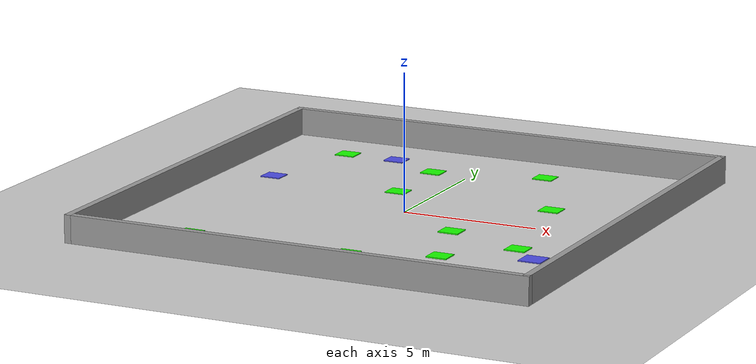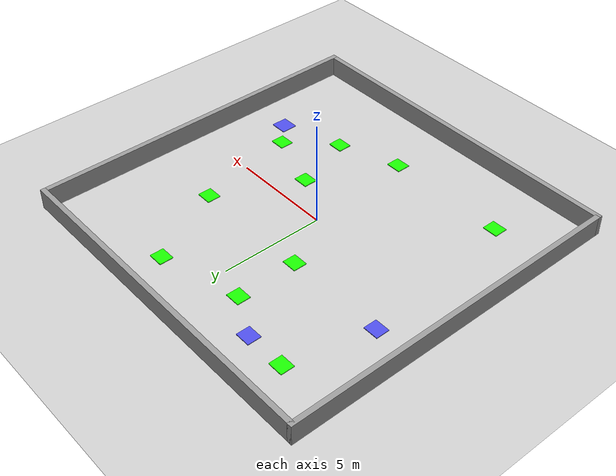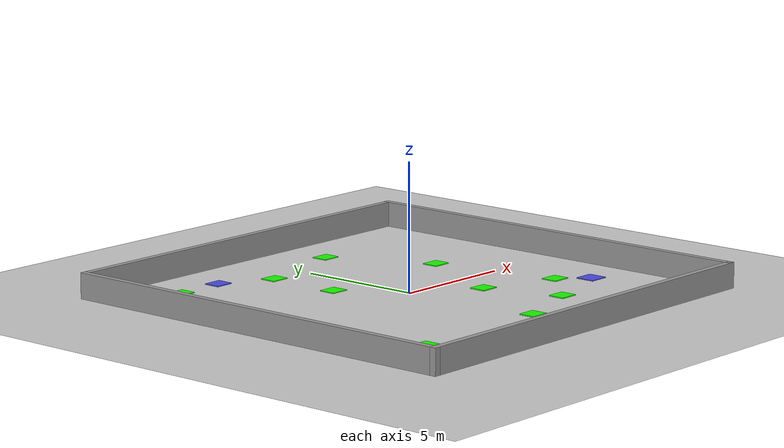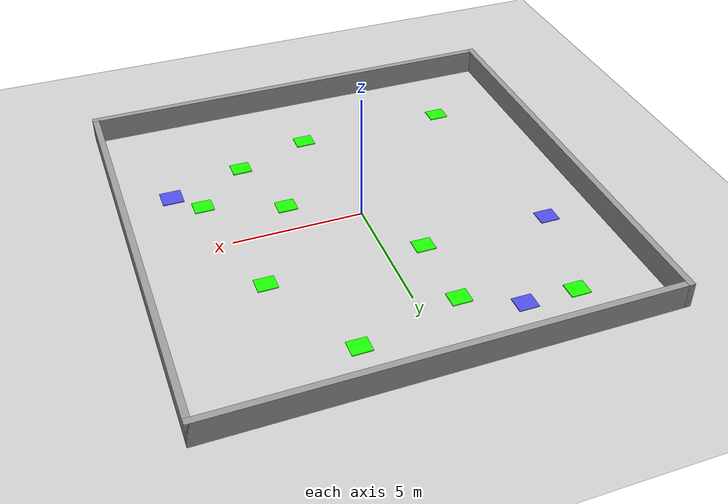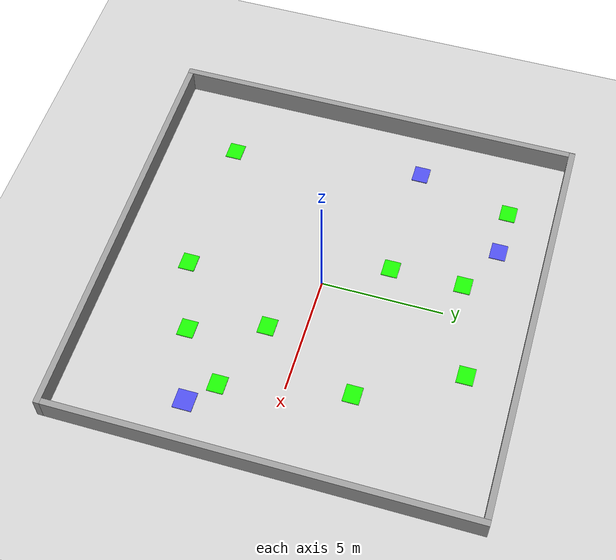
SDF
<sdf version="1.6">
 <world name="default">
  <light name="sun" type="directional">
   <pose>0 0 10 0 -0 0</pose>
   <diffuse>0.8 0.8 0.8 1</diffuse>
   <specular>0.2 0.2 0.2 1</specular>
   <attenuation>
    <range>1000</range>
    <constant>0.9</constant>
    <linear>0.01</linear>
    <quadratic>0.001</quadratic>
   </attenuation>
   <direction>-0.5 0.1 -0.9</direction>
  </light>
  <model name="ground_plane">
   <static>1</static>
   <link name="link">
    <collision name="collision">
     <geometry><plane><normal>0 0 1</normal><size>100 100</size></plane></geometry>
     <surface>
      <contact><collide_bitmask>65535</collide_bitmask></contact>
      <friction><ode><mu>100</mu><mu2>50</mu2></ode></friction>
     </surface>
    </collision>
    <visual name="visual">
     <cast_shadows>0</cast_shadows>
     <geometry><plane><normal>0 0 1</normal><size>100 100</size></plane></geometry>
     <material>
      <script><uri>file://media/materials/scripts/gazebo.material</uri><name>Gazebo/Grey</name></script>
     </material>
    </visual>
   </link>
  </model>
  <gravity>0 0 -9.8</gravity>
  <magnetic_field>6e-06 2.3e-05 -4.2e-05</magnetic_field>
  <atmosphere type="adiabatic"/>
  <physics name="default_physics" default="0" type="ode">
   <max_step_size>0.001</max_step_size>
   <real_time_factor>1</real_time_factor>
   <real_time_update_rate>1000</real_time_update_rate>
  </physics>
  <scene><ambient>0.4 0.4 0.4 1</ambient><background>0.7 0.7 0.7 1</background><shadows>1</shadows></scene>
  <audio><device>default</device></audio>
  <spherical_coordinates>
   <surface_model>EARTH_WGS84</surface_model>
   <latitude_deg>0</latitude_deg>
   <longitude_deg>0</longitude_deg>
   <elevation>0</elevation>
   <heading_deg>0</heading_deg>
  </spherical_coordinates>
  <model name="energy_border_1">
   <link name="Wall_5">
    <collision name="Wall_5_Collision">
     <geometry><box><size>17.25 0.25 1</size></box></geometry>
     <pose>0 0 0.5 0 -0 0</pose>
    </collision>
    <visual name="Wall_5_Visual">
     <pose>0 0 0.5 0 -0 0</pose>
     <geometry><box><size>17.25 0.25 1</size></box></geometry>
     <material>
      <script><uri>file://media/materials/scripts/gazebo.material</uri><name>Gazebo/Grey</name></script>
      <ambient>1 1 1 1</ambient>
     </material>
     <meta><layer>0</layer></meta>
    </visual>
    <pose>-8.5 0 0 0 -0 1.5708</pose>
   </link>
   <link name="Wall_6">
    <collision name="Wall_6_Collision">
     <geometry><box><size>17.25 0.25 1</size></box></geometry>
     <pose>0 0 0.5 0 -0 0</pose>
    </collision>
    <visual name="Wall_6_Visual">
     <pose>0 0 0.5 0 -0 0</pose>
     <geometry><box><size>17.25 0.25 1</size></box></geometry>
     <material>
      <script><uri>file://media/materials/scripts/gazebo.material</uri><name>Gazebo/Grey</name></script>
      <ambient>1 1 1 1</ambient>
     </material>
     <meta><layer>0</layer></meta>
    </visual>
    <pose>0 8.5 0 0 -0 0</pose>
   </link>
   <link name="Wall_7">
    <collision name="Wall_7_Collision">
     <geometry><box><size>17.25 0.25 1</size></box></geometry>
     <pose>0 0 0.5 0 -0 0</pose>
    </collision>
    <visual name="Wall_7_Visual">
     <pose>0 0 0.5 0 -0 0</pose>
     <geometry><box><size>17.25 0.25 1</size></box></geometry>
     <material>
      <script><uri>file://media/materials/scripts/gazebo.material</uri><name>Gazebo/Grey</name></script>
      <ambient>1 1 1 1</ambient>
     </material>
     <meta><layer>0</layer></meta>
    </visual>
    <pose>8.5 0 0 0 -0 -1.5708</pose>
   </link>
   <link name="Wall_8">
    <collision name="Wall_8_Collision">
     <geometry><box><size>17.25 0.25 1</size></box></geometry>
     <pose>0 0 0.5 0 -0 0</pose>
    </collision>
    <visual name="Wall_8_Visual">
     <pose>0 0 0.5 0 -0 0</pose>
     <geometry><box><size>17.25 0.25 1</size></box></geometry>
     <material>
      <script><uri>file://media/materials/scripts/gazebo.material</uri><name>Gazebo/Grey</name></script>
      <ambient>1 1 1 1</ambient>
     </material>
     <meta><layer>0</layer></meta>
    </visual>
    <pose>0 -8.5 0 0 -0 3.14159</pose>
   </link>
   <static>1</static>
  </model>
  <model name="dark_blue_marker_box">
   <link name="link">
    <inertial>
     <mass>0.0822145</mass>
     <inertia>
      <ixx>0.00320009</ixx>
      <ixy>0</ixy>
      <ixz>0</ixz>
      <iyy>0.00408712</iyy>
      <iyz>0</iyz>
      <izz>0.00691769</izz>
     </inertia>
    </inertial>
    <gravity>0</gravity>
    <visual name="visual">
     <geometry><box><size>0.818438 0.775696 0.164218</size></box></geometry>
     <material>
      <script><name>Gazebo/Grey</name><uri>file://media/materials/scripts/gazebo.material</uri></script>
      <shader type="vertex"><normal_map>__default__</normal_map></shader>
      <ambient>0.125 0.29 0.529 1</ambient>
      <diffuse>0.3 0.3 0.9 1</diffuse>
      <specular>0.01 0.01 0.01 1</specular>
      <emissive>0 0 0 1</emissive>
     </material>
    </visual>
   </link>
   <static>0</static>
   <pose>6.50783 -3.50467 -0.071253 0 -0 0</pose>
  </model>
  <model name="light_green_marker_box">
   <link name="link">
    <inertial>
     <mass>0.0822145</mass>
     <inertia>
      <ixx>0.00320009</ixx>
      <ixy>0</ixy>
      <ixz>0</ixz>
      <iyy>0.00408712</iyy>
      <iyz>0</iyz>
      <izz>0.00691769</izz>
     </inertia>
    </inertial>
    <gravity>0</gravity>
    <visual name="visual">
     <geometry><box><size>0.75471 0.663413 0.164218</size></box></geometry>
     <material>
      <script><name>Gazebo/Grey</name><uri>file://media/materials/scripts/gazebo.material</uri></script>
      <shader type="vertex"><normal_map>__default__</normal_map></shader>
      <ambient>0.098 1 0 1</ambient>
      <diffuse>0.7 0.7 0.7 1</diffuse>
      <specular>0.01 0.01 0.01 1</specular>
      <emissive>0 0 0 1</emissive>
     </material>
    </visual>
   </link>
   <static>0</static>
   <pose>5.50469 -2.54291 -0.067727 0 -0 0</pose>
  </model>
  <model name="light_green_marker_box_0">
   <link name="link">
    <inertial>
     <mass>0.0822145</mass>
     <inertia>
      <ixx>0.00320009</ixx>
      <ixy>0</ixy>
      <ixz>0</ixz>
      <iyy>0.00408712</iyy>
      <iyz>0</iyz>
      <izz>0.00691769</izz>
     </inertia>
    </inertial>
    <gravity>0</gravity>
    <visual name="visual">
     <geometry><box><size>0.75471 0.663413 0.164218</size></box></geometry>
     <material>
      <script><name>Gazebo/Grey</name><uri>file://media/materials/scripts/gazebo.material</uri></script>
      <shader type="vertex"><normal_map>__default__</normal_map></shader>
      <ambient>0.098 1 0 1</ambient>
      <diffuse>0.7 0.7 0.7 1</diffuse>
      <specular>0.01 0.01 0.01 1</specular>
      <emissive>0 0 0 1</emissive>
     </material>
    </visual>
   </link>
   <static>0</static>
   <pose>3.50726 -4.47854 -0.065946 0 -0 0</pose>
  </model>
  <model name="light_green_marker_box_1">
   <link name="link">
    <inertial>
     <mass>0.0822145</mass>
     <inertia>
      <ixx>0.00320009</ixx>
      <ixy>0</ixy>
      <ixz>0</ixz>
      <iyy>0.00408712</iyy>
      <iyz>0</iyz>
      <izz>0.00691769</izz>
     </inertia>
    </inertial>
    <gravity>0</gravity>
    <visual name="visual">
     <geometry><box><size>0.75471 0.663413 0.164218</size></box></geometry>
     <material>
      <script><name>Gazebo/Grey</name><uri>file://media/materials/scripts/gazebo.material</uri></script>
      <shader type="vertex"><normal_map>__default__</normal_map></shader>
      <ambient>0.098 1 0 1</ambient>
      <diffuse>0.7 0.7 0.7 1</diffuse>
      <specular>0.01 0.01 0.01 1</specular>
      <emissive>0 0 0 1</emissive>
     </material>
    </visual>
   </link>
   <static>0</static>
   <pose>2.52651 -1.4866 -0.065786 0 -0 0</pose>
  </model>
  <model name="light_green_marker_box_2">
   <link name="link">
    <inertial>
     <mass>0.0822145</mass>
     <inertia>
      <ixx>0.00320009</ixx>
      <ixy>0</ixy>
      <ixz>0</ixz>
      <iyy>0.00408712</iyy>
      <iyz>0</iyz>
      <izz>0.00691769</izz>
     </inertia>
    </inertial>
    <gravity>0</gravity>
    <visual name="visual">
     <geometry><box><size>0.75471 0.663413 0.164218</size></box></geometry>
     <material>
      <script><name>Gazebo/Grey</name><uri>file://media/materials/scripts/gazebo.material</uri></script>
      <shader type="vertex"><normal_map>__default__</normal_map></shader>
      <ambient>0.098 1 0 1</ambient>
      <diffuse>0.7 0.7 0.7 1</diffuse>
      <specular>0.01 0.01 0.01 1</specular>
      <emissive>0 0 0 1</emissive>
     </material>
    </visual>
   </link>
   <static>0</static>
   <pose>4.49167 2.53827 -0.069847 0 -0 0</pose>
  </model>
  <model name="light_green_marker_box_3">
   <link name="link">
    <inertial>
     <mass>0.0822145</mass>
     <inertia>
      <ixx>0.00320009</ixx>
      <ixy>0</ixy>
      <ixz>0</ixz>
      <iyy>0.00408712</iyy>
      <iyz>0</iyz>
      <izz>0.00691769</izz>
     </inertia>
    </inertial>
    <gravity>0</gravity>
    <visual name="visual">
     <geometry><box><size>0.75471 0.663413 0.164218</size></box></geometry>
     <material>
      <script><name>Gazebo/Grey</name><uri>file://media/materials/scripts/gazebo.material</uri></script>
      <shader type="vertex"><normal_map>__default__</normal_map></shader>
      <ambient>0.098 1 0 1</ambient>
      <diffuse>0.7 0.7 0.7 1</diffuse>
      <specular>0.01 0.01 0.01 1</specular>
      <emissive>0 0 0 1</emissive>
     </material>
    </visual>
   </link>
   <static>0</static>
   <pose>2.49593 6.49821 -0.070218 0 -0 0</pose>
  </model>
  <model name="light_green_marker_box_4">
   <link name="link">
    <inertial>
     <mass>0.0822145</mass>
     <inertia>
      <ixx>0.00320009</ixx>
      <ixy>0</ixy>
      <ixz>0</ixz>
      <iyy>0.00408712</iyy>
      <iyz>0</iyz>
      <izz>0.00691769</izz>
     </inertia>
    </inertial>
    <gravity>0</gravity>
    <visual name="visual">
     <geometry><box><size>0.75471 0.663413 0.164218</size></box></geometry>
     <material>
      <script><name>Gazebo/Grey</name><uri>file://media/materials/scripts/gazebo.material</uri></script>
      <shader type="vertex"><normal_map>__default__</normal_map></shader>
      <ambient>0.098 1 0 1</ambient>
      <diffuse>0.7 0.7 0.7 1</diffuse>
      <specular>0.01 0.01 0.01 1</specular>
      <emissive>0 0 0 1</emissive>
     </material>
    </visual>
   </link>
   <static>0</static>
   <pose>-1.4611 2.49534 -0.072997 0 -0 0</pose>
  </model>
  <model name="light_green_marker_box_5">
   <link name="link">
    <inertial>
     <mass>0.0822145</mass>
     <inertia>
      <ixx>0.00320009</ixx>
      <ixy>0</ixy>
      <ixz>0</ixz>
      <iyy>0.00408712</iyy>
      <iyz>0</iyz>
      <izz>0.00691769</izz>
     </inertia>
    </inertial>
    <gravity>0</gravity>
    <visual name="visual">
     <geometry><box><size>0.75471 0.663413 0.164218</size></box></geometry>
     <material>
      <script><name>Gazebo/Grey</name><uri>file://media/materials/scripts/gazebo.material</uri></script>
      <shader type="vertex"><normal_map>__default__</normal_map></shader>
      <ambient>0.098 1 0 1</ambient>
      <diffuse>0.7 0.7 0.7 1</diffuse>
      <specular>0.01 0.01 0.01 1</specular>
      <emissive>0 0 0 1</emissive>
     </material>
    </visual>
   </link>
   <static>0</static>
   <pose>-1.50431 5.49254 -0.069716 0 -0 0</pose>
  </model>
  <model name="dark_blue_marker_box_0">
   <link name="link">
    <inertial>
     <mass>0.0822145</mass>
     <inertia>
      <ixx>0.00320009</ixx>
      <ixy>0</ixy>
      <ixz>0</ixz>
      <iyy>0.00408712</iyy>
      <iyz>0</iyz>
      <izz>0.00691769</izz>
     </inertia>
    </inertial>
    <gravity>0</gravity>
    <visual name="visual">
     <geometry><box><size>0.75471 0.663413 0.164218</size></box></geometry>
     <material>
      <script><name>Gazebo/Grey</name><uri>file://media/materials/scripts/gazebo.material</uri></script>
      <shader type="vertex"><normal_map>__default__</normal_map></shader>
      <ambient>0.125 0.29 0.529 1</ambient>
      <diffuse>0.3 0.3 0.9 1</diffuse>
      <specular>0.01 0.01 0.01 1</specular>
      <emissive>0 0 0 1</emissive>
     </material>
    </visual>
   </link>
   <static>0</static>
   <pose>-3.49367 6.51914 -0.071862 0 -0 0</pose>
  </model>
  <model name="light_green_marker_box_6">
   <link name="link">
    <inertial>
     <mass>0.0822145</mass>
     <inertia>
      <ixx>0.00320009</ixx>
      <ixy>0</ixy>
      <ixz>0</ixz>
      <iyy>0.00408712</iyy>
      <iyz>0</iyz>
      <izz>0.00691769</izz>
     </inertia>
    </inertial>
    <gravity>0</gravity>
    <visual name="visual">
     <geometry><box><size>0.75471 0.663413 0.164218</size></box></geometry>
     <material>
      <script><name>Gazebo/Grey</name><uri>file://media/materials/scripts/gazebo.material</uri></script>
      <shader type="vertex"><normal_map>__default__</normal_map></shader>
      <ambient>0.098 1 0 1</ambient>
      <diffuse>0.7 0.7 0.7 1</diffuse>
      <specular>0.01 0.01 0.01 1</specular>
      <emissive>0 0 0 1</emissive>
     </material>
    </visual>
   </link>
   <static>0</static>
   <pose>-5.49891 6.51395 -0.070742 0 -0 0</pose>
  </model>
  <model name="dark_blue_marker_box_1">
   <link name="link">
    <inertial>
     <mass>0.0822145</mass>
     <inertia>
      <ixx>0.00320009</ixx>
      <ixy>0</ixy>
      <ixz>0</ixz>
      <iyy>0.00408712</iyy>
      <iyz>0</iyz>
      <izz>0.00691769</izz>
     </inertia>
    </inertial>
    <gravity>0</gravity>
    <visual name="visual">
     <geometry><box><size>0.75471 0.663413 0.164218</size></box></geometry>
     <material>
      <script><name>Gazebo/Grey</name><uri>file://media/materials/scripts/gazebo.material</uri></script>
      <shader type="vertex"><normal_map>__default__</normal_map></shader>
      <ambient>0.125 0.29 0.529 1</ambient>
      <diffuse>0.3 0.3 0.9 1</diffuse>
      <specular>0.01 0.01 0.01 1</specular>
      <emissive>0 0 0 1</emissive>
     </material>
    </visual>
   </link>
   <static>0</static>
   <pose>-6.48293 2.52788 -0.070313 0 -0 0</pose>
  </model>
  <model name="light_green_marker_box_7">
   <link name="link">
    <inertial>
     <mass>0.0822145</mass>
     <inertia>
      <ixx>0.00320009</ixx>
      <ixy>0</ixy>
      <ixz>0</ixz>
      <iyy>0.00408712</iyy>
      <iyz>0</iyz>
      <izz>0.00691769</izz>
     </inertia>
    </inertial>
    <gravity>0</gravity>
    <visual name="visual">
     <geometry><box><size>0.75471 0.663413 0.164218</size></box></geometry>
     <material>
      <script><name>Gazebo/Grey</name><uri>file://media/materials/scripts/gazebo.material</uri></script>
      <shader type="vertex"><normal_map>__default__</normal_map></shader>
      <ambient>0.098 1 0 1</ambient>
      <diffuse>0.7 0.7 0.7 1</diffuse>
      <specular>0.01 0.01 0.01 1</specular>
      <emissive>0 0 0 1</emissive>
     </material>
    </visual>
   </link>
   <static>0</static>
   <pose>0.533111 -5.48278 -0.067429 0 -0 0</pose>
  </model>
  <model name="light_green_marker_box_8">
   <link name="link">
    <inertial>
     <mass>0.0822145</mass>
     <inertia>
      <ixx>0.00320009</ixx>
      <ixy>0</ixy>
      <ixz>0</ixz>
      <iyy>0.00408712</iyy>
      <iyz>0</iyz>
      <izz>0.00691769</izz>
     </inertia>
    </inertial>
    <gravity>0</gravity>
    <visual name="visual">
     <geometry><box><size>0.75471 0.663413 0.164218</size></box></geometry>
     <material>
      <script><name>Gazebo/Grey</name><uri>file://media/materials/scripts/gazebo.material</uri></script>
      <shader type="vertex"><normal_map>__default__</normal_map></shader>
      <ambient>0.098 1 0 1</ambient>
      <diffuse>0.7 0.7 0.7 1</diffuse>
      <specular>0.01 0.01 0.01 1</specular>
      <emissive>0 0 0 1</emissive>
     </material>
    </visual>
   </link>
   <static>0</static>
   <pose>-5.47388 -5.48657 -0.072214 0 -0 0</pose>
  </model>
 </world>
</sdf>
